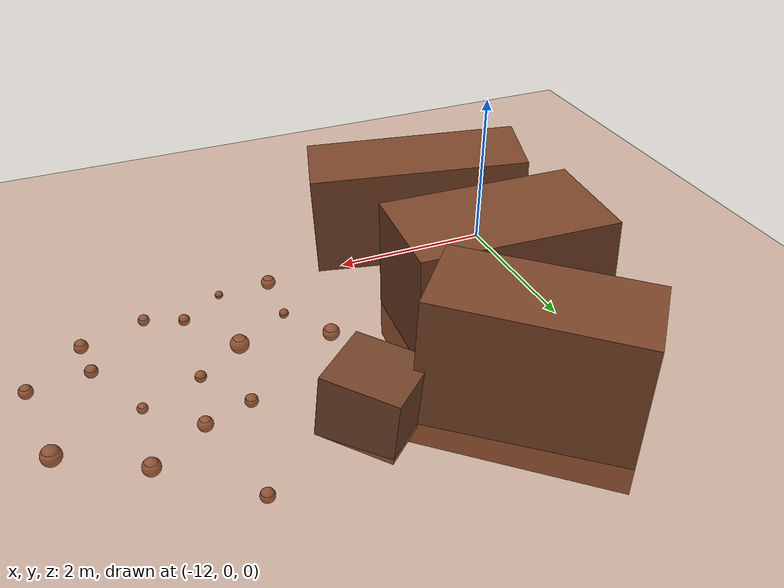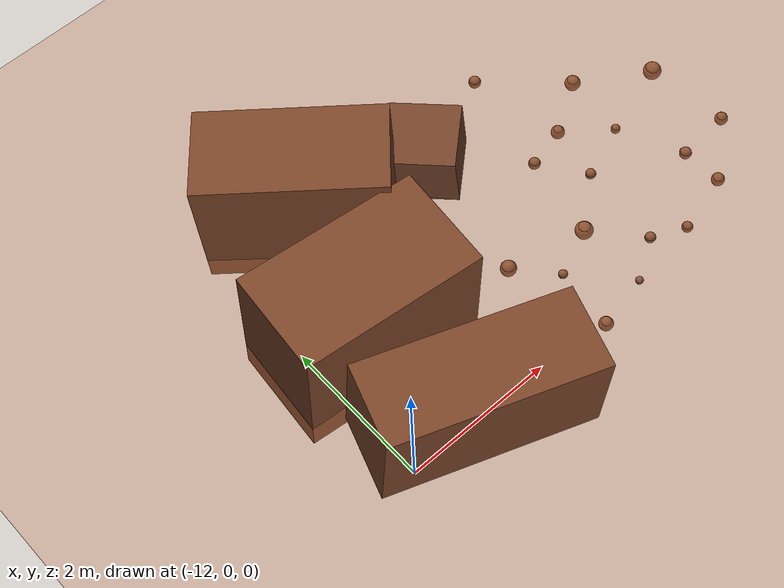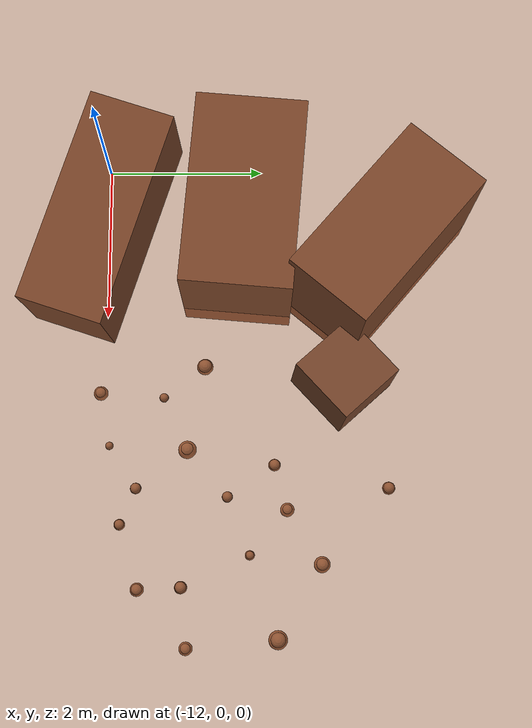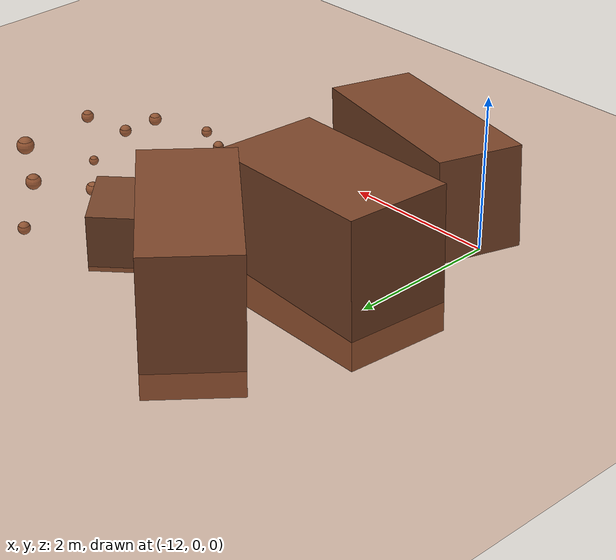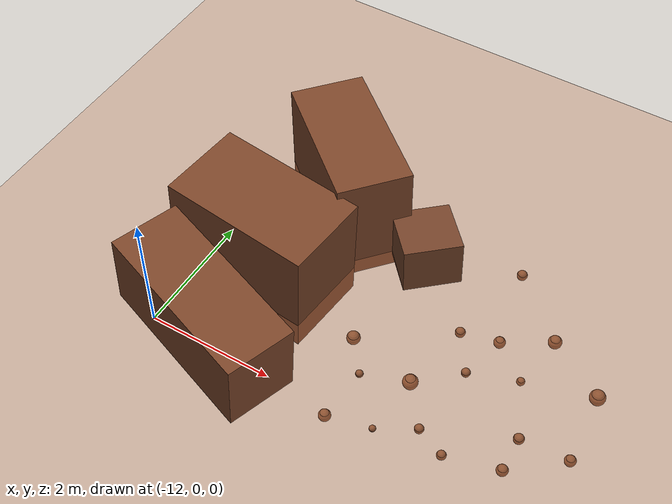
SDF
<sdf version="1.8">
 <world name="rover_world">
  <model name="ground_plane">
   <static>true</static>
   <link name="link">
    <collision name="collision">
     <geometry><plane><normal>0 0 1</normal><size>60 60</size></plane></geometry>
    </collision>
    <visual name="visual">
     <geometry><plane><normal>0 0 1</normal><size>60 60</size></plane></geometry>
     <material><ambient>0.71 0.40 0.24 1</ambient><diffuse>0.71 0.40 0.24 1</diffuse></material>
    </visual>
   </link>
  </model>
  <model name="rim_18">
   <static>true</static>
   <pose>-10.756 3.495 0.592 0.000 0.030 2.436</pose>
   <link name="link">
    <collision name="collision"><geometry><box><size>2.334 1.166 1.815</size></box></geometry></collision>
    <visual name="visual">
     <geometry><box><size>2.334 1.166 1.815</size></box></geometry>
     <material><ambient>0.48 0.27 0.16 1</ambient><diffuse>0.48 0.27 0.16 1</diffuse></material>
    </visual>
   </link>
  </model>
  <model name="rim_19">
   <static>true</static>
   <pose>-11.232 1.779 0.507 0.000 -0.039 3.052</pose>
   <link name="link">
    <collision name="collision"><geometry><box><size>2.394 1.386 1.881</size></box></geometry></collision>
    <visual name="visual">
     <geometry><box><size>2.394 1.386 1.881</size></box></geometry>
     <material><ambient>0.48 0.27 0.16 1</ambient><diffuse>0.48 0.27 0.16 1</diffuse></material>
    </visual>
   </link>
  </model>
  <model name="rim_20">
   <static>true</static>
   <pose>-11.043 0.000 0.788 0.000 -0.076 2.817</pose>
   <link name="link">
    <collision name="collision"><geometry><box><size>2.706 1.080 1.276</size></box></geometry></collision>
    <visual name="visual">
     <geometry><box><size>2.706 1.080 1.276</size></box></geometry>
     <material><ambient>0.48 0.27 0.16 1</ambient><diffuse>0.48 0.27 0.16 1</diffuse></material>
    </visual>
   </link>
  </model>
  <model name="rock_b12">
   <static>true</static>
   <pose>-9.131 3.024 0.339 -0.004 0.075 2.305</pose>
   <link name="link">
    <collision name="collision"><geometry><box><size>0.904 0.899 0.759</size></box></geometry></collision>
    <visual name="visual">
     <geometry><box><size>0.904 0.899 0.759</size></box></geometry>
     <material><ambient>0.45 0.26 0.16 1</ambient><diffuse>0.45 0.26 0.16 1</diffuse></material>
    </visual>
   </link>
  </model>
  <model name="bump_10">
   <static>true</static>
   <pose>-7.307 0.195 -0.045 0 0 0</pose>
   <link name="link">
    <collision name="collision"><geometry><sphere><radius>0.071</radius></sphere></geometry></collision>
    <visual name="visual">
     <geometry><sphere><radius>0.071</radius></sphere></geometry>
     <material><ambient>0.55 0.32 0.19 1</ambient><diffuse>0.55 0.32 0.19 1</diffuse></material>
    </visual>
   </link>
  </model>
  <model name="bump_22">
   <static>true</static>
   <pose>-5.887 2.178 -0.082 0 0 0</pose>
   <link name="link">
    <collision name="collision"><geometry><sphere><radius>0.119</radius></sphere></geometry></collision>
    <visual name="visual">
     <geometry><sphere><radius>0.119</radius></sphere></geometry>
     <material><ambient>0.55 0.32 0.19 1</ambient><diffuse>0.55 0.32 0.19 1</diffuse></material>
    </visual>
   </link>
  </model>
  <model name="bump_54">
   <static>true</static>
   <pose>-7.649 1.552 -0.029 0 0 0</pose>
   <link name="link">
    <collision name="collision"><geometry><sphere><radius>0.069</radius></sphere></geometry></collision>
    <visual name="visual">
     <geometry><sphere><radius>0.069</radius></sphere></geometry>
     <material><ambient>0.55 0.32 0.19 1</ambient><diffuse>0.55 0.32 0.19 1</diffuse></material>
    </visual>
   </link>
  </model>
  <model name="bump_56">
   <static>true</static>
   <pose>-8.927 0.739 -0.020 0 0 0</pose>
   <link name="link">
    <collision name="collision"><geometry><sphere><radius>0.059</radius></sphere></geometry></collision>
    <visual name="visual">
     <geometry><sphere><radius>0.059</radius></sphere></geometry>
     <material><ambient>0.55 0.32 0.19 1</ambient><diffuse>0.55 0.32 0.19 1</diffuse></material>
    </visual>
   </link>
  </model>
  <model name="bump_58">
   <static>true</static>
   <pose>-6.920 1.833 -0.046 0 0 0</pose>
   <link name="link">
    <collision name="collision"><geometry><sphere><radius>0.062</radius></sphere></geometry></collision>
    <visual name="visual">
     <geometry><sphere><radius>0.062</radius></sphere></geometry>
     <material><ambient>0.55 0.32 0.19 1</ambient><diffuse>0.55 0.32 0.19 1</diffuse></material>
    </visual>
   </link>
  </model>
  <model name="bump_81">
   <static>true</static>
   <pose>-8.055 2.150 -0.047 0 0 0</pose>
   <link name="link">
    <collision name="collision"><geometry><sphere><radius>0.078</radius></sphere></geometry></collision>
    <visual name="visual">
     <geometry><sphere><radius>0.078</radius></sphere></geometry>
     <material><ambient>0.55 0.32 0.19 1</ambient><diffuse>0.55 0.32 0.19 1</diffuse></material>
    </visual>
   </link>
  </model>
  <model name="bump_87">
   <static>true</static>
   <pose>-6.527 0.972 -0.044 0 0 0</pose>
   <link name="link">
    <collision name="collision"><geometry><sphere><radius>0.080</radius></sphere></geometry></collision>
    <visual name="visual">
     <geometry><sphere><radius>0.080</radius></sphere></geometry>
     <material><ambient>0.55 0.32 0.19 1</ambient><diffuse>0.55 0.32 0.19 1</diffuse></material>
    </visual>
   </link>
  </model>
  <model name="bump_124">
   <static>true</static>
   <pose>-6.804 2.736 -0.077 0 0 0</pose>
   <link name="link">
    <collision name="collision"><geometry><sphere><radius>0.103</radius></sphere></geometry></collision>
    <visual name="visual">
     <geometry><sphere><radius>0.103</radius></sphere></geometry>
     <material><ambient>0.55 0.32 0.19 1</ambient><diffuse>0.55 0.32 0.19 1</diffuse></material>
    </visual>
   </link>
  </model>
  <model name="bump_129">
   <static>true</static>
   <pose>-8.304 0.051 -0.012 0 0 0</pose>
   <link name="link">
    <collision name="collision"><geometry><sphere><radius>0.051</radius></sphere></geometry></collision>
    <visual name="visual">
     <geometry><sphere><radius>0.051</radius></sphere></geometry>
     <material><ambient>0.55 0.32 0.19 1</ambient><diffuse>0.55 0.32 0.19 1</diffuse></material>
    </visual>
   </link>
  </model>
  <model name="bump_133">
   <static>true</static>
   <pose>-8.263 1.040 -0.094 0 0 0</pose>
   <link name="link">
    <collision name="collision"><geometry><sphere><radius>0.116</radius></sphere></geometry></collision>
    <visual name="visual">
     <geometry><sphere><radius>0.116</radius></sphere></geometry>
     <material><ambient>0.55 0.32 0.19 1</ambient><diffuse>0.55 0.32 0.19 1</diffuse></material>
    </visual>
   </link>
  </model>
  <model name="bump_181">
   <static>true</static>
   <pose>-6.504 0.427 -0.061 0 0 0</pose>
   <link name="link">
    <collision name="collision"><geometry><sphere><radius>0.086</radius></sphere></geometry></collision>
    <visual name="visual">
     <geometry><sphere><radius>0.086</radius></sphere></geometry>
     <material><ambient>0.55 0.32 0.19 1</ambient><diffuse>0.55 0.32 0.19 1</diffuse></material>
    </visual>
   </link>
  </model>
  <model name="bump_184">
   <static>true</static>
   <pose>-7.489 2.307 -0.073 0 0 0</pose>
   <link name="link">
    <collision name="collision"><geometry><sphere><radius>0.089</radius></sphere></geometry></collision>
    <visual name="visual">
     <geometry><sphere><radius>0.089</radius></sphere></geometry>
     <material><ambient>0.55 0.32 0.19 1</ambient><diffuse>0.55 0.32 0.19 1</diffuse></material>
    </visual>
   </link>
  </model>
  <model name="bump_207">
   <static>true</static>
   <pose>-9.343 1.263 -0.066 0 0 0</pose>
   <link name="link">
    <collision name="collision"><geometry><sphere><radius>0.104</radius></sphere></geometry></collision>
    <visual name="visual">
     <geometry><sphere><radius>0.104</radius></sphere></geometry>
     <material><ambient>0.55 0.32 0.19 1</ambient><diffuse>0.55 0.32 0.19 1</diffuse></material>
    </visual>
   </link>
  </model>
  <model name="bump_219">
   <static>true</static>
   <pose>-7.755 3.591 -0.046 0 0 0</pose>
   <link name="link">
    <collision name="collision"><geometry><sphere><radius>0.081</radius></sphere></geometry></collision>
    <visual name="visual">
     <geometry><sphere><radius>0.081</radius></sphere></geometry>
     <material><ambient>0.55 0.32 0.19 1</ambient><diffuse>0.55 0.32 0.19 1</diffuse></material>
    </visual>
   </link>
  </model>
  <model name="bump_220">
   <static>true</static>
   <pose>-8.999 -0.079 -0.071 0 0 0</pose>
   <link name="link">
    <collision name="collision"><geometry><sphere><radius>0.092</radius></sphere></geometry></collision>
    <visual name="visual">
     <geometry><sphere><radius>0.092</radius></sphere></geometry>
     <material><ambient>0.55 0.32 0.19 1</ambient><diffuse>0.55 0.32 0.19 1</diffuse></material>
    </visual>
   </link>
  </model>
  <model name="bump_241">
   <static>true</static>
   <pose>-7.762 0.393 -0.033 0 0 0</pose>
   <link name="link">
    <collision name="collision"><geometry><sphere><radius>0.071</radius></sphere></geometry></collision>
    <visual name="visual">
     <geometry><sphere><radius>0.071</radius></sphere></geometry>
     <material><ambient>0.55 0.32 0.19 1</ambient><diffuse>0.55 0.32 0.19 1</diffuse></material>
    </visual>
   </link>
  </model>
  <model name="bump_256">
   <static>true</static>
   <pose>-5.788 1.039 -0.065 0 0 0</pose>
   <link name="link">
    <collision name="collision"><geometry><sphere><radius>0.085</radius></sphere></geometry></collision>
    <visual name="visual">
     <geometry><sphere><radius>0.085</radius></sphere></geometry>
     <material><ambient>0.55 0.32 0.19 1</ambient><diffuse>0.55 0.32 0.19 1</diffuse></material>
    </visual>
   </link>
  </model>
 </world>
</sdf>
